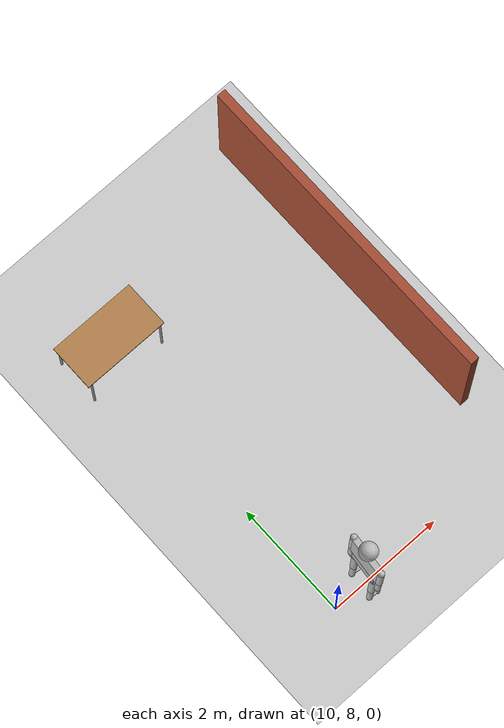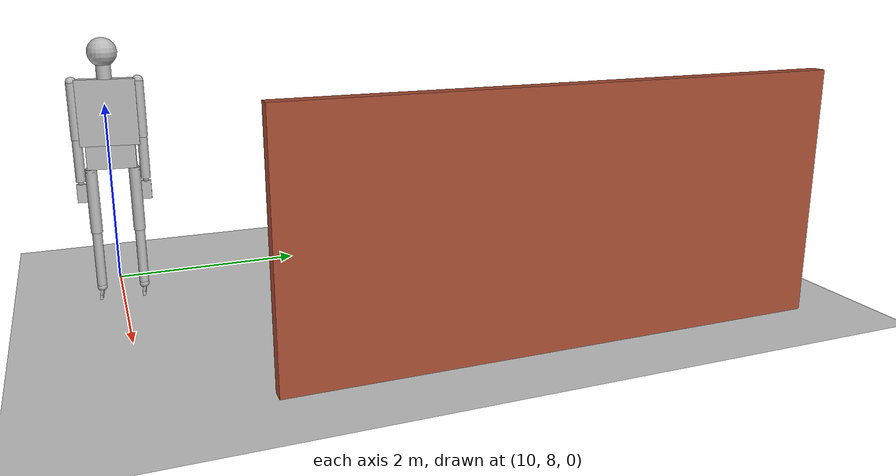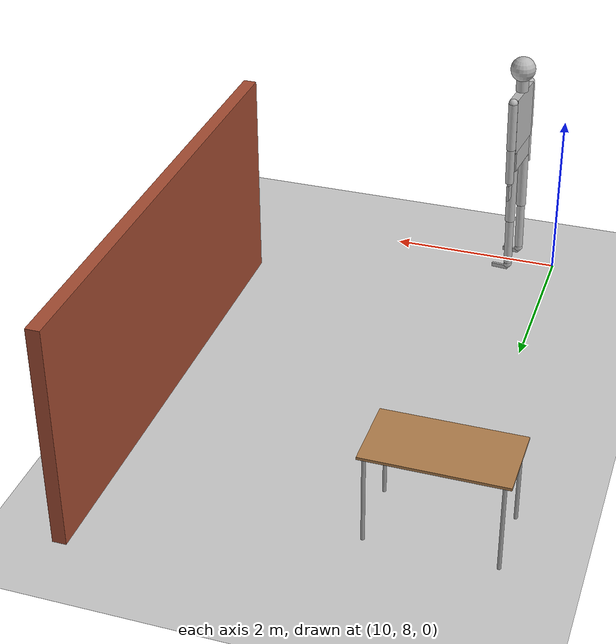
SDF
<sdf version="1.7">
 <world name="default">
  <model name="ground_plane">
   <static>1</static>
   <link name="link">
    <collision name="collision">
     <geometry><plane><normal>0 0 1</normal><size>100 100</size></plane></geometry>
     <surface>
      <contact><collide_bitmask>65535</collide_bitmask></contact>
      <friction><ode><mu>100</mu><mu2>50</mu2></ode></friction>
     </surface>
    </collision>
    <visual name="visual">
     <cast_shadows>0</cast_shadows>
     <geometry><plane><normal>0 0 1</normal><size>100 100</size></plane></geometry>
     <material>
      <script><uri>file://media/materials/scripts/gazebo.material</uri><name>Gazebo/Grey</name></script>
     </material>
    </visual>
   </link>
  </model>
  <model name="newworld">
   <link name="Wall_65">
    <pose>13.3999 10.8999 0 0 0 -1.5708</pose>
    <visual name="Wall_65_Visual">
     <pose>0 0 1.25 0 -0 0</pose>
     <geometry><box><size>5.5 0.15 2.5</size></box></geometry>
     <material>
      <script><uri>file://media/materials/scripts/gazebo.material</uri><name>Gazebo/Bricks</name></script>
      <ambient>1 1 1 1</ambient>
      <shader type="pixel"/>
     </material>
     <meta><layer>0</layer></meta>
    </visual>
    <collision name="Wall_65_Collision">
     <pose>0 0 1.25 0 -0 0</pose>
     <geometry><box><size>5.5 0.15 2.5</size></box></geometry>
     <surface>
      <friction>
       <ode><mu>1</mu><mu2>1</mu2><fdir1>0 0 0</fdir1><slip1>0</slip1><slip2>0</slip2></ode>
       <torsional>
        <coefficient>1</coefficient>
        <patch_radius>0</patch_radius>
        <surface_radius>0</surface_radius>
        <use_patch_radius>1</use_patch_radius>
        <ode><slip>0</slip></ode>
       </torsional>
      </friction>
      <bounce><restitution_coefficient>0</restitution_coefficient><threshold>1e+06</threshold></bounce>
      <contact>
       <collide_without_contact>0</collide_without_contact>
       <collide_without_contact_bitmask>1</collide_without_contact_bitmask>
       <collide_bitmask>1</collide_bitmask>
       <ode>
        <soft_cfm>0</soft_cfm>
        <soft_erp>0.2</soft_erp>
        <kp>1e+13</kp>
        <kd>1</kd>
        <max_vel>0.01</max_vel>
        <min_depth>0</min_depth>
       </ode>
       <bullet>
        <split_impulse>1</split_impulse>
        <split_impulse_penetration_threshold>-0.01</split_impulse_penetration_threshold>
        <soft_cfm>0</soft_cfm>
        <soft_erp>0.2</soft_erp>
        <kp>1e+13</kp>
        <kd>1</kd>
       </bullet>
      </contact>
     </surface>
    </collision>
   </link>
   <static>1</static>
   <pose>0.193711 0.903984 0 0 -0 0</pose>
  </model>
  <model name="ragdoll_0">
   <pose>10.5299 8.00768 1.39977 2.2e-05 0.015945 -0.104902</pose>
   <link name="hip">
    <inertial>
     <inertia><ixx>0.1</ixx><ixy>0</ixy><ixz>0</ixz><iyy>0.1</iyy><iyz>0</iyz><izz>0.1</izz></inertia>
     <mass>10</mass>
    </inertial>
    <collision name="hip_geom">
     <pose>0 0 0.125 0 -0 0</pose>
     <geometry><box><size>0.1 0.5 0.25</size></box></geometry>
     <surface>
      <friction><ode><mu>-1</mu><mu2>-1</mu2><fdir1>0 0 0</fdir1><slip1>0</slip1><slip2>0</slip2></ode></friction>
      <bounce><restitution_coefficient>0</restitution_coefficient><threshold>100000</threshold></bounce>
      <contact>
       <ode>
        <soft_cfm>0</soft_cfm>
        <soft_erp>0.2</soft_erp>
        <kp>1e+12</kp>
        <kd>1</kd>
        <max_vel>0</max_vel>
        <min_depth>0.001</min_depth>
       </ode>
      </contact>
     </surface>
    </collision>
    <visual name="hip_geom_visual">
     <pose>0 0 0.125 0 -0 0</pose>
     <geometry><box><size>0.1 0.5 0.25</size></box></geometry>
    </visual>
    <gravity>0</gravity>
   </link>
   <link name="l_thigh_pan">
    <pose>0 0.22 0 0 -0 0</pose>
    <inertial>
     <inertia><ixx>0.01</ixx><ixy>0</ixy><ixz>0</ixz><iyy>0.01</iyy><iyz>0</iyz><izz>0.01</izz></inertia>
     <mass>1</mass>
    </inertial>
    <collision name="l_thigh_pan_geom">
     <pose>0 0 -0.03 0 -0 0</pose>
     <geometry><sphere><radius>0.06</radius></sphere></geometry>
     <surface>
      <friction><ode><mu>-1</mu><mu2>-1</mu2><fdir1>0 0 0</fdir1><slip1>0</slip1><slip2>0</slip2></ode></friction>
      <bounce><restitution_coefficient>0</restitution_coefficient><threshold>100000</threshold></bounce>
      <contact>
       <ode>
        <soft_cfm>0</soft_cfm>
        <soft_erp>0.2</soft_erp>
        <kp>1e+12</kp>
        <kd>1</kd>
        <max_vel>0</max_vel>
        <min_depth>0.001</min_depth>
       </ode>
      </contact>
     </surface>
    </collision>
    <visual name="l_thigh_pan_geom_visual">
     <pose>0 0 -0.03 0 -0 0</pose>
     <geometry><sphere><radius>0.06</radius></sphere></geometry>
    </visual>
    <gravity>0</gravity>
   </link>
   <link name="l_thigh_lift">
    <pose>0 0.22 0 0 -0 0</pose>
    <inertial>
     <inertia><ixx>0.05</ixx><ixy>0</ixy><ixz>0</ixz><iyy>0.05</iyy><iyz>0</iyz><izz>0.05</izz></inertia>
     <mass>5</mass>
    </inertial>
    <collision name="l_thigh_lift_geom">
     <pose>0 0 -0.35 0 -0 0</pose>
     <geometry><cylinder><radius>0.06</radius><length>0.7</length></cylinder></geometry>
     <surface>
      <friction><ode><mu>-1</mu><mu2>-1</mu2><fdir1>0 0 0</fdir1><slip1>0</slip1><slip2>0</slip2></ode></friction>
      <bounce><restitution_coefficient>0</restitution_coefficient><threshold>100000</threshold></bounce>
      <contact>
       <ode>
        <soft_cfm>0</soft_cfm>
        <soft_erp>0.2</soft_erp>
        <kp>1e+12</kp>
        <kd>1</kd>
        <max_vel>0</max_vel>
        <min_depth>0.001</min_depth>
       </ode>
      </contact>
     </surface>
    </collision>
    <visual name="l_thigh_lift_geom_visual">
     <pose>0 0 -0.35 0 -0 0</pose>
     <geometry><cylinder><radius>0.06</radius><length>0.7</length></cylinder></geometry>
    </visual>
    <gravity>0</gravity>
   </link>
   <link name="l_calf">
    <pose>0 0.22 -0.7 0 -0 0</pose>
    <inertial>
     <inertia><ixx>0.02</ixx><ixy>0</ixy><ixz>0</ixz><iyy>0.02</iyy><iyz>0</iyz><izz>0.02</izz></inertia>
     <mass>2</mass>
    </inertial>
    <collision name="l_calf_geom">
     <pose>0 0 -0.3 0 -0 0</pose>
     <geometry><cylinder><radius>0.05</radius><length>0.6</length></cylinder></geometry>
     <surface>
      <friction><ode><mu>-1</mu><mu2>-1</mu2><fdir1>0 0 0</fdir1><slip1>0</slip1><slip2>0</slip2></ode></friction>
      <bounce><restitution_coefficient>0</restitution_coefficient><threshold>100000</threshold></bounce>
      <contact>
       <ode>
        <soft_cfm>0</soft_cfm>
        <soft_erp>0.2</soft_erp>
        <kp>1e+12</kp>
        <kd>1</kd>
        <max_vel>0</max_vel>
        <min_depth>0.001</min_depth>
       </ode>
      </contact>
     </surface>
    </collision>
    <visual name="l_calf_geom_visual">
     <pose>0 0 -0.3 0 -0 0</pose>
     <geometry><cylinder><radius>0.05</radius><length>0.6</length></cylinder></geometry>
    </visual>
    <gravity>0</gravity>
   </link>
   <link name="l_ankle">
    <pose>0 0.22 -1.325 0 -0 0</pose>
    <inertial>
     <inertia><ixx>0.01</ixx><ixy>0</ixy><ixz>0</ixz><iyy>0.01</iyy><iyz>0</iyz><izz>0.01</izz></inertia>
     <mass>1</mass>
    </inertial>
    <collision name="l_ankle_geom">
     <geometry><sphere><radius>0.05</radius></sphere></geometry>
     <surface>
      <friction><ode><mu>-1</mu><mu2>-1</mu2><fdir1>0 0 0</fdir1><slip1>0</slip1><slip2>0</slip2></ode></friction>
      <bounce><restitution_coefficient>0</restitution_coefficient><threshold>100000</threshold></bounce>
      <contact>
       <ode>
        <soft_cfm>0</soft_cfm>
        <soft_erp>0.2</soft_erp>
        <kp>1e+12</kp>
        <kd>1</kd>
        <max_vel>0</max_vel>
        <min_depth>0.001</min_depth>
       </ode>
      </contact>
     </surface>
    </collision>
    <visual name="l_ankle_geom_visual"><geometry><sphere><radius>0.05</radius></sphere></geometry></visual>
    <gravity>0</gravity>
   </link>
   <link name="l_foot">
    <pose>0 0.22 -1.35 0 -0 0</pose>
    <inertial>
     <pose>0.1 0 0 0 -0 0</pose>
     <inertia><ixx>0.01</ixx><ixy>0</ixy><ixz>0</ixz><iyy>0.01</iyy><iyz>0</iyz><izz>0.01</izz></inertia>
     <mass>1</mass>
    </inertial>
    <collision name="l_foot_geom">
     <pose>0.1 0 -0.025 0 -0 0</pose>
     <geometry><box><size>0.2 0.03 0.05</size></box></geometry>
     <surface>
      <friction><ode><mu>-1</mu><mu2>-1</mu2><fdir1>0 0 0</fdir1><slip1>0</slip1><slip2>0</slip2></ode></friction>
      <bounce><restitution_coefficient>0</restitution_coefficient><threshold>100000</threshold></bounce>
      <contact>
       <ode>
        <soft_cfm>0</soft_cfm>
        <soft_erp>0.2</soft_erp>
        <kp>1e+12</kp>
        <kd>1</kd>
        <max_vel>0</max_vel>
        <min_depth>0.001</min_depth>
       </ode>
      </contact>
     </surface>
    </collision>
    <visual name="l_foot_geom_visual">
     <pose>0.1 0 -0.025 0 -0 0</pose>
     <geometry><box><size>0.2 0.03 0.05</size></box></geometry>
    </visual>
   </link>
   <link name="r_thigh_pan">
    <pose>0 -0.22 0 0 -0 0</pose>
    <inertial>
     <inertia><ixx>0.01</ixx><ixy>0</ixy><ixz>0</ixz><iyy>0.01</iyy><iyz>0</iyz><izz>0.01</izz></inertia>
     <mass>1</mass>
    </inertial>
    <collision name="r_thigh_pan_geom">
     <pose>0 0 -0.03 0 -0 0</pose>
     <geometry><sphere><radius>0.06</radius></sphere></geometry>
     <surface>
      <friction><ode><mu>-1</mu><mu2>-1</mu2><fdir1>0 0 0</fdir1><slip1>0</slip1><slip2>0</slip2></ode></friction>
      <bounce><restitution_coefficient>0</restitution_coefficient><threshold>100000</threshold></bounce>
      <contact>
       <ode>
        <soft_cfm>0</soft_cfm>
        <soft_erp>0.2</soft_erp>
        <kp>1e+12</kp>
        <kd>1</kd>
        <max_vel>0</max_vel>
        <min_depth>0.001</min_depth>
       </ode>
      </contact>
     </surface>
    </collision>
    <visual name="r_thigh_pan_geom_visual">
     <pose>0 0 -0.03 0 -0 0</pose>
     <geometry><sphere><radius>0.06</radius></sphere></geometry>
    </visual>
    <gravity>0</gravity>
   </link>
   <link name="r_thigh_lift">
    <pose>0 -0.22 0 0 -0 0</pose>
    <inertial>
     <inertia><ixx>0.05</ixx><ixy>0</ixy><ixz>0</ixz><iyy>0.05</iyy><iyz>0</iyz><izz>0.05</izz></inertia>
     <mass>5</mass>
    </inertial>
    <collision name="r_thigh_lift_geom">
     <pose>0 0 -0.35 0 -0 0</pose>
     <geometry><cylinder><radius>0.06</radius><length>0.7</length></cylinder></geometry>
     <surface>
      <friction><ode><mu>-1</mu><mu2>-1</mu2><fdir1>0 0 0</fdir1><slip1>0</slip1><slip2>0</slip2></ode></friction>
      <bounce><restitution_coefficient>0</restitution_coefficient><threshold>100000</threshold></bounce>
      <contact>
       <ode>
        <soft_cfm>0</soft_cfm>
        <soft_erp>0.2</soft_erp>
        <kp>1e+12</kp>
        <kd>1</kd>
        <max_vel>0</max_vel>
        <min_depth>0.001</min_depth>
       </ode>
      </contact>
     </surface>
    </collision>
    <visual name="r_thigh_lift_geom_visual">
     <pose>0 0 -0.35 0 -0 0</pose>
     <geometry><cylinder><radius>0.06</radius><length>0.7</length></cylinder></geometry>
    </visual>
    <gravity>0</gravity>
   </link>
   <link name="r_calf">
    <pose>0 -0.22 -0.7 0 -0 0</pose>
    <inertial>
     <inertia><ixx>0.02</ixx><ixy>0</ixy><ixz>0</ixz><iyy>0.02</iyy><iyz>0</iyz><izz>0.02</izz></inertia>
     <mass>2</mass>
    </inertial>
    <collision name="r_calf_geom">
     <pose>0 0 -0.3 0 -0 0</pose>
     <geometry><cylinder><radius>0.05</radius><length>0.6</length></cylinder></geometry>
     <surface>
      <friction><ode><mu>-1</mu><mu2>-1</mu2><fdir1>0 0 0</fdir1><slip1>0</slip1><slip2>0</slip2></ode></friction>
      <bounce><restitution_coefficient>0</restitution_coefficient><threshold>100000</threshold></bounce>
      <contact>
       <ode>
        <soft_cfm>0</soft_cfm>
        <soft_erp>0.2</soft_erp>
        <kp>1e+12</kp>
        <kd>1</kd>
        <max_vel>0</max_vel>
        <min_depth>0.001</min_depth>
       </ode>
      </contact>
     </surface>
    </collision>
    <visual name="r_calf_geom_visual">
     <pose>0 0 -0.3 0 -0 0</pose>
     <geometry><cylinder><radius>0.05</radius><length>0.6</length></cylinder></geometry>
    </visual>
    <gravity>0</gravity>
   </link>
   <link name="r_ankle">
    <pose>0 -0.22 -1.325 0 -0 0</pose>
    <inertial>
     <inertia><ixx>0.01</ixx><ixy>0</ixy><ixz>0</ixz><iyy>0.01</iyy><iyz>0</iyz><izz>0.01</izz></inertia>
     <mass>1</mass>
    </inertial>
    <collision name="r_ankle_geom">
     <geometry><sphere><radius>0.05</radius></sphere></geometry>
     <surface>
      <friction><ode><mu>-1</mu><mu2>-1</mu2><fdir1>0 0 0</fdir1><slip1>0</slip1><slip2>0</slip2></ode></friction>
      <bounce><restitution_coefficient>0</restitution_coefficient><threshold>100000</threshold></bounce>
      <contact>
       <ode>
        <soft_cfm>0</soft_cfm>
        <soft_erp>0.2</soft_erp>
        <kp>1e+12</kp>
        <kd>1</kd>
        <max_vel>0</max_vel>
        <min_depth>0.001</min_depth>
       </ode>
      </contact>
     </surface>
    </collision>
    <visual name="r_ankle_geom_visual"><geometry><sphere><radius>0.05</radius></sphere></geometry></visual>
    <gravity>0</gravity>
   </link>
   <link name="r_foot">
    <pose>0 -0.22 -1.35 0 -0 0</pose>
    <inertial>
     <pose>0.1 0 0 0 -0 0</pose>
     <inertia><ixx>0.01</ixx><ixy>0</ixy><ixz>0</ixz><iyy>0.01</iyy><iyz>0</iyz><izz>0.01</izz></inertia>
     <mass>1</mass>
    </inertial>
    <collision name="r_foot_geom">
     <pose>0.1 0 -0.025 0 -0 0</pose>
     <geometry><box><size>0.2 0.03 0.05</size></box></geometry>
     <surface>
      <friction><ode><mu>-1</mu><mu2>-1</mu2><fdir1>0 0 0</fdir1><slip1>0</slip1><slip2>0</slip2></ode></friction>
      <bounce><restitution_coefficient>0</restitution_coefficient><threshold>100000</threshold></bounce>
      <contact>
       <ode>
        <soft_cfm>0</soft_cfm>
        <soft_erp>0.2</soft_erp>
        <kp>1e+12</kp>
        <kd>1</kd>
        <max_vel>0</max_vel>
        <min_depth>0.001</min_depth>
       </ode>
      </contact>
     </surface>
    </collision>
    <visual name="r_foot_geom_visual">
     <pose>0.1 0 -0.025 0 -0 0</pose>
     <geometry><box><size>0.2 0.03 0.05</size></box></geometry>
    </visual>
   </link>
   <link name="torso">
    <pose>0 0 0.25 0 -0 0</pose>
    <inertial>
     <inertia><ixx>0.3</ixx><ixy>0</ixy><ixz>0</ixz><iyy>0.3</iyy><iyz>0</iyz><izz>0.3</izz></inertia>
     <mass>30</mass>
    </inertial>
    <collision name="torso_geom">
     <pose>0 0 0.35 0 -0 0</pose>
     <geometry><box><size>0.1 0.6 0.7</size></box></geometry>
     <surface>
      <friction><ode><mu>-1</mu><mu2>-1</mu2><fdir1>0 0 0</fdir1><slip1>0</slip1><slip2>0</slip2></ode></friction>
      <bounce><restitution_coefficient>0</restitution_coefficient><threshold>100000</threshold></bounce>
      <contact>
       <ode>
        <soft_cfm>0</soft_cfm>
        <soft_erp>0.2</soft_erp>
        <kp>1e+12</kp>
        <kd>1</kd>
        <max_vel>0</max_vel>
        <min_depth>0.001</min_depth>
       </ode>
      </contact>
     </surface>
    </collision>
    <visual name="torso_geom_visual">
     <pose>0 0 0.35 0 -0 0</pose>
     <geometry><box><size>0.1 0.6 0.7</size></box></geometry>
    </visual>
    <gravity>0</gravity>
   </link>
   <link name="l_shoulder">
    <pose>0 0.3275 0.9225 0 -0 0</pose>
    <inertial>
     <inertia><ixx>0.01</ixx><ixy>0</ixy><ixz>0</ixz><iyy>0.01</iyy><iyz>0</iyz><izz>0.01</izz></inertia>
     <mass>1</mass>
    </inertial>
    <collision name="l_shoulder_geom">
     <geometry><sphere><radius>0.055</radius></sphere></geometry>
     <surface>
      <friction><ode><mu>-1</mu><mu2>-1</mu2><fdir1>0 0 0</fdir1><slip1>0</slip1><slip2>0</slip2></ode></friction>
      <bounce><restitution_coefficient>0</restitution_coefficient><threshold>100000</threshold></bounce>
      <contact>
       <ode>
        <soft_cfm>0</soft_cfm>
        <soft_erp>0.2</soft_erp>
        <kp>1e+12</kp>
        <kd>1</kd>
        <max_vel>0</max_vel>
        <min_depth>0.001</min_depth>
       </ode>
      </contact>
     </surface>
    </collision>
    <visual name="l_shoulder_geom_visual"><geometry><sphere><radius>0.055</radius></sphere></geometry></visual>
    <gravity>0</gravity>
   </link>
   <link name="l_upper_arm">
    <pose>0 0.3275 0.9225 0 -0 0</pose>
    <inertial>
     <inertia><ixx>0.02</ixx><ixy>0</ixy><ixz>0</ixz><iyy>0.02</iyy><iyz>0</iyz><izz>0.02</izz></inertia>
     <mass>2</mass>
    </inertial>
    <collision name="l_upper_arm_geom">
     <pose>0 0 -0.3 0 -0 0</pose>
     <geometry><cylinder><radius>0.055</radius><length>0.6</length></cylinder></geometry>
     <surface>
      <friction><ode><mu>-1</mu><mu2>-1</mu2><fdir1>0 0 0</fdir1><slip1>0</slip1><slip2>0</slip2></ode></friction>
      <bounce><restitution_coefficient>0</restitution_coefficient><threshold>100000</threshold></bounce>
      <contact>
       <ode>
        <soft_cfm>0</soft_cfm>
        <soft_erp>0.2</soft_erp>
        <kp>1e+12</kp>
        <kd>1</kd>
        <max_vel>0</max_vel>
        <min_depth>0.001</min_depth>
       </ode>
      </contact>
     </surface>
    </collision>
    <visual name="l_upper_arm_geom_visual">
     <pose>0 0 -0.3 0 -0 0</pose>
     <geometry><cylinder><radius>0.055</radius><length>0.6</length></cylinder></geometry>
    </visual>
    <gravity>0</gravity>
   </link>
   <link name="l_forearm">
    <pose>0 0.3275 0.3225 0 -0 0</pose>
    <inertial>
     <inertia><ixx>0.01</ixx><ixy>0</ixy><ixz>0</ixz><iyy>0.01</iyy><iyz>0</iyz><izz>0.01</izz></inertia>
     <mass>1</mass>
    </inertial>
    <collision name="l_forearm_geom">
     <pose>0 0 -0.225 0 -0 0</pose>
     <geometry><cylinder><radius>0.05</radius><length>0.45</length></cylinder></geometry>
     <surface>
      <friction><ode><mu>-1</mu><mu2>-1</mu2><fdir1>0 0 0</fdir1><slip1>0</slip1><slip2>0</slip2></ode></friction>
      <bounce><restitution_coefficient>0</restitution_coefficient><threshold>100000</threshold></bounce>
      <contact>
       <ode>
        <soft_cfm>0</soft_cfm>
        <soft_erp>0.2</soft_erp>
        <kp>1e+12</kp>
        <kd>1</kd>
        <max_vel>0</max_vel>
        <min_depth>0.001</min_depth>
       </ode>
      </contact>
     </surface>
    </collision>
    <visual name="l_forearm_geom_visual">
     <pose>0 0 -0.225 0 -0 0</pose>
     <geometry><cylinder><radius>0.05</radius><length>0.45</length></cylinder></geometry>
    </visual>
    <gravity>0</gravity>
   </link>
   <link name="l_wrist">
    <pose>0 0.3275 -0.1425 0 -0 0</pose>
    <inertial>
     <inertia><ixx>0.01</ixx><ixy>0</ixy><ixz>0</ixz><iyy>0.01</iyy><iyz>0</iyz><izz>0.01</izz></inertia>
     <mass>1</mass>
    </inertial>
    <collision name="l_wrist_geom">
     <geometry><sphere><radius>0.03</radius></sphere></geometry>
     <surface>
      <friction><ode><mu>-1</mu><mu2>-1</mu2><fdir1>0 0 0</fdir1><slip1>0</slip1><slip2>0</slip2></ode></friction>
      <bounce><restitution_coefficient>0</restitution_coefficient><threshold>100000</threshold></bounce>
      <contact>
       <ode>
        <soft_cfm>0</soft_cfm>
        <soft_erp>0.2</soft_erp>
        <kp>1e+12</kp>
        <kd>1</kd>
        <max_vel>0</max_vel>
        <min_depth>0.001</min_depth>
       </ode>
      </contact>
     </surface>
    </collision>
    <visual name="l_wrist_geom_visual"><geometry><sphere><radius>0.03</radius></sphere></geometry></visual>
    <gravity>0</gravity>
   </link>
   <link name="l_hand">
    <pose>0 0.3275 -0.1575 0 -0 0</pose>
    <inertial>
     <inertia><ixx>0.01</ixx><ixy>0</ixy><ixz>0</ixz><iyy>0.01</iyy><iyz>0</iyz><izz>0.01</izz></inertia>
     <mass>1</mass>
    </inertial>
    <collision name="l_hand_geom">
     <pose>0 0 -0.1 0 -0 0</pose>
     <geometry><box><size>0.03 0.1 0.2</size></box></geometry>
     <surface>
      <friction><ode><mu>-1</mu><mu2>-1</mu2><fdir1>0 0 0</fdir1><slip1>0</slip1><slip2>0</slip2></ode></friction>
      <bounce><restitution_coefficient>0</restitution_coefficient><threshold>100000</threshold></bounce>
      <contact>
       <ode>
        <soft_cfm>0</soft_cfm>
        <soft_erp>0.2</soft_erp>
        <kp>1e+12</kp>
        <kd>1</kd>
        <max_vel>0</max_vel>
        <min_depth>0.001</min_depth>
       </ode>
      </contact>
     </surface>
    </collision>
    <visual name="l_hand_geom_visual">
     <pose>0 0 -0.1 0 -0 0</pose>
     <geometry><box><size>0.03 0.1 0.2</size></box></geometry>
    </visual>
    <gravity>0</gravity>
   </link>
   <link name="neck">
    <pose>0 0 0.95 0 -0 0</pose>
    <inertial>
     <inertia><ixx>0.01</ixx><ixy>0</ixy><ixz>0</ixz><iyy>0.01</iyy><iyz>0</iyz><izz>0.01</izz></inertia>
     <mass>1</mass>
    </inertial>
    <collision name="neck_geom">
     <pose>0 0 0.1 0 -0 0</pose>
     <geometry><cylinder><radius>0.075</radius><length>0.2</length></cylinder></geometry>
     <surface>
      <friction><ode><mu>-1</mu><mu2>-1</mu2><fdir1>0 0 0</fdir1><slip1>0</slip1><slip2>0</slip2></ode></friction>
      <bounce><restitution_coefficient>0</restitution_coefficient><threshold>100000</threshold></bounce>
      <contact>
       <ode>
        <soft_cfm>0</soft_cfm>
        <soft_erp>0.2</soft_erp>
        <kp>1e+12</kp>
        <kd>1</kd>
        <max_vel>0</max_vel>
        <min_depth>0.001</min_depth>
       </ode>
      </contact>
     </surface>
    </collision>
    <visual name="neck_geom_visual">
     <pose>0 0 0.1 0 -0 0</pose>
     <geometry><cylinder><radius>0.075</radius><length>0.2</length></cylinder></geometry>
    </visual>
    <gravity>0</gravity>
   </link>
   <link name="head">
    <pose>0 0 1.225 0 -0 0</pose>
    <inertial>
     <inertia><ixx>0.1</ixx><ixy>0</ixy><ixz>0</ixz><iyy>0.1</iyy><iyz>0</iyz><izz>0.1</izz></inertia>
     <mass>10</mass>
    </inertial>
    <collision name="head_geom">
     <geometry><sphere><radius>0.15</radius></sphere></geometry>
     <surface>
      <friction><ode><mu>-1</mu><mu2>-1</mu2><fdir1>0 0 0</fdir1><slip1>0</slip1><slip2>0</slip2></ode></friction>
      <bounce><restitution_coefficient>0</restitution_coefficient><threshold>100000</threshold></bounce>
      <contact>
       <ode>
        <soft_cfm>0</soft_cfm>
        <soft_erp>0.2</soft_erp>
        <kp>1e+12</kp>
        <kd>1</kd>
        <max_vel>0</max_vel>
        <min_depth>0.001</min_depth>
       </ode>
      </contact>
     </surface>
    </collision>
    <visual name="head_geom_visual"><geometry><sphere><radius>0.15</radius></sphere></geometry></visual>
    <gravity>0</gravity>
   </link>
   <link name="r_shoulder">
    <pose>0 -0.3275 0.9225 0 -0 0</pose>
    <inertial>
     <inertia><ixx>0.01</ixx><ixy>0</ixy><ixz>0</ixz><iyy>0.01</iyy><iyz>0</iyz><izz>0.01</izz></inertia>
     <mass>1</mass>
    </inertial>
    <collision name="r_shoulder_geom">
     <geometry><sphere><radius>0.055</radius></sphere></geometry>
     <surface>
      <friction><ode><mu>-1</mu><mu2>-1</mu2><fdir1>0 0 0</fdir1><slip1>0</slip1><slip2>0</slip2></ode></friction>
      <bounce><restitution_coefficient>0</restitution_coefficient><threshold>100000</threshold></bounce>
      <contact>
       <ode>
        <soft_cfm>0</soft_cfm>
        <soft_erp>0.2</soft_erp>
        <kp>1e+12</kp>
        <kd>1</kd>
        <max_vel>0</max_vel>
        <min_depth>0.001</min_depth>
       </ode>
      </contact>
     </surface>
    </collision>
    <visual name="r_shoulder_geom_visual"><geometry><sphere><radius>0.055</radius></sphere></geometry></visual>
    <gravity>0</gravity>
   </link>
   <link name="r_upper_arm">
    <pose>0 -0.3275 0.9225 0 -0 0</pose>
    <inertial>
     <inertia><ixx>0.02</ixx><ixy>0</ixy><ixz>0</ixz><iyy>0.02</iyy><iyz>0</iyz><izz>0.02</izz></inertia>
     <mass>2</mass>
    </inertial>
    <collision name="r_upper_arm_geom">
     <pose>0 0 -0.3 0 -0 0</pose>
     <geometry><cylinder><radius>0.055</radius><length>0.6</length></cylinder></geometry>
     <surface>
      <friction><ode><mu>-1</mu><mu2>-1</mu2><fdir1>0 0 0</fdir1><slip1>0</slip1><slip2>0</slip2></ode></friction>
      <bounce><restitution_coefficient>0</restitution_coefficient><threshold>100000</threshold></bounce>
      <contact>
       <ode>
        <soft_cfm>0</soft_cfm>
        <soft_erp>0.2</soft_erp>
        <kp>1e+12</kp>
        <kd>1</kd>
        <max_vel>0</max_vel>
        <min_depth>0.001</min_depth>
       </ode>
      </contact>
     </surface>
    </collision>
    <visual name="r_upper_arm_geom_visual">
     <pose>0 0 -0.3 0 -0 0</pose>
     <geometry><cylinder><radius>0.055</radius><length>0.6</length></cylinder></geometry>
    </visual>
    <gravity>0</gravity>
   </link>
   <link name="r_forearm">
    <pose>0 -0.3275 0.3225 0 -0 0</pose>
    <inertial>
     <inertia><ixx>0.01</ixx><ixy>0</ixy><ixz>0</ixz><iyy>0.01</iyy><iyz>0</iyz><izz>0.01</izz></inertia>
     <mass>1</mass>
    </inertial>
    <collision name="r_forearm_geom">
     <pose>0 0 -0.225 0 -0 0</pose>
     <geometry><cylinder><radius>0.05</radius><length>0.45</length></cylinder></geometry>
     <surface>
      <friction><ode><mu>-1</mu><mu2>-1</mu2><fdir1>0 0 0</fdir1><slip1>0</slip1><slip2>0</slip2></ode></friction>
      <bounce><restitution_coefficient>0</restitution_coefficient><threshold>100000</threshold></bounce>
      <contact>
       <ode>
        <soft_cfm>0</soft_cfm>
        <soft_erp>0.2</soft_erp>
        <kp>1e+12</kp>
        <kd>1</kd>
        <max_vel>0</max_vel>
        <min_depth>0.001</min_depth>
       </ode>
      </contact>
     </surface>
    </collision>
    <visual name="r_forearm_geom_visual">
     <pose>0 0 -0.225 0 -0 0</pose>
     <geometry><cylinder><radius>0.05</radius><length>0.45</length></cylinder></geometry>
    </visual>
    <gravity>0</gravity>
   </link>
   <link name="r_wrist">
    <pose>0 -0.3275 -0.1425 0 -0 0</pose>
    <inertial>
     <inertia><ixx>0.01</ixx><ixy>0</ixy><ixz>0</ixz><iyy>0.01</iyy><iyz>0</iyz><izz>0.01</izz></inertia>
     <mass>1</mass>
    </inertial>
    <collision name="r_wrist_geom">
     <geometry><sphere><radius>0.03</radius></sphere></geometry>
     <surface>
      <friction><ode><mu>-1</mu><mu2>-1</mu2><fdir1>0 0 0</fdir1><slip1>0</slip1><slip2>0</slip2></ode></friction>
      <bounce><restitution_coefficient>0</restitution_coefficient><threshold>100000</threshold></bounce>
      <contact>
       <ode>
        <soft_cfm>0</soft_cfm>
        <soft_erp>0.2</soft_erp>
        <kp>1e+12</kp>
        <kd>1</kd>
        <max_vel>0</max_vel>
        <min_depth>0.001</min_depth>
       </ode>
      </contact>
     </surface>
    </collision>
    <visual name="r_wrist_geom_visual"><geometry><sphere><radius>0.03</radius></sphere></geometry></visual>
    <gravity>0</gravity>
   </link>
   <link name="r_hand">
    <pose>0 -0.3275 -0.1575 0 -0 0</pose>
    <inertial>
     <inertia><ixx>0.01</ixx><ixy>0</ixy><ixz>0</ixz><iyy>0.01</iyy><iyz>0</iyz><izz>0.01</izz></inertia>
     <mass>1</mass>
    </inertial>
    <collision name="r_hand_geom">
     <pose>0 0 -0.1 0 -0 0</pose>
     <geometry><box><size>0.03 0.1 0.2</size></box></geometry>
     <surface>
      <friction><ode><mu>-1</mu><mu2>-1</mu2><fdir1>0 0 0</fdir1><slip1>0</slip1><slip2>0</slip2></ode></friction>
      <bounce><restitution_coefficient>0</restitution_coefficient><threshold>100000</threshold></bounce>
      <contact>
       <ode>
        <soft_cfm>0</soft_cfm>
        <soft_erp>0.2</soft_erp>
        <kp>1e+12</kp>
        <kd>1</kd>
        <max_vel>0</max_vel>
        <min_depth>0.001</min_depth>
       </ode>
      </contact>
     </surface>
    </collision>
    <visual name="r_hand_geom_visual">
     <pose>0 0 -0.1 0 -0 0</pose>
     <geometry><box><size>0.03 0.1 0.2</size></box></geometry>
    </visual>
    <gravity>0</gravity>
   </link>
   <joint name="l_thigh_pan_joint" type="revolute">
    <parent>hip</parent>
    <child>l_thigh_pan</child>
    <axis>
     <dynamics>
      <damping>0</damping>
      <friction>0</friction>
      <spring_reference>0</spring_reference>
      <spring_stiffness>0</spring_stiffness>
     </dynamics>
     <limit><lower>-1.5708</lower><upper>1.5708</upper><effort>0</effort><velocity>0</velocity></limit>
     <xyz expressed_in="__model__">0 0 1</xyz>
    </axis>
   </joint>
   <joint name="l_thigh_lift_joint" type="revolute">
    <parent>l_thigh_pan</parent>
    <child>l_thigh_lift</child>
    <axis>
     <dynamics>
      <damping>0</damping>
      <friction>0</friction>
      <spring_reference>0</spring_reference>
      <spring_stiffness>0</spring_stiffness>
     </dynamics>
     <limit><lower>-1.5708</lower><upper>1.5708</upper><effort>0</effort><velocity>0</velocity></limit>
     <xyz expressed_in="__model__">0 1 0</xyz>
    </axis>
   </joint>
   <joint name="l_calf_joint" type="revolute">
    <parent>l_thigh_lift</parent>
    <child>l_calf</child>
    <axis>
     <dynamics>
      <damping>0</damping>
      <friction>0</friction>
      <spring_reference>0</spring_reference>
      <spring_stiffness>0</spring_stiffness>
     </dynamics>
     <limit><lower>-1.5708</lower><upper>1.5708</upper><effort>0</effort><velocity>0</velocity></limit>
     <xyz expressed_in="__model__">0 1 0</xyz>
    </axis>
   </joint>
   <joint name="l_ankle_joint" type="revolute">
    <parent>l_calf</parent>
    <child>l_ankle</child>
    <axis>
     <dynamics>
      <damping>0</damping>
      <friction>0</friction>
      <spring_reference>0</spring_reference>
      <spring_stiffness>0</spring_stiffness>
     </dynamics>
     <limit><lower>-1.5708</lower><upper>1.5708</upper><effort>0</effort><velocity>0</velocity></limit>
     <xyz expressed_in="__model__">0 1 0</xyz>
    </axis>
   </joint>
   <joint name="l_foot_joint" type="revolute">
    <parent>l_ankle</parent>
    <child>l_foot</child>
    <axis>
     <dynamics>
      <damping>0</damping>
      <friction>0</friction>
      <spring_reference>0</spring_reference>
      <spring_stiffness>0</spring_stiffness>
     </dynamics>
     <limit><lower>-1.5708</lower><upper>1.5708</upper><effort>0</effort><velocity>0</velocity></limit>
     <xyz expressed_in="__model__">1 0 0</xyz>
    </axis>
   </joint>
   <joint name="r_thigh_pan_joint" type="revolute">
    <parent>hip</parent>
    <child>r_thigh_pan</child>
    <axis>
     <dynamics>
      <damping>0</damping>
      <friction>0</friction>
      <spring_reference>0</spring_reference>
      <spring_stiffness>0</spring_stiffness>
     </dynamics>
     <limit><lower>-1.5708</lower><upper>1.5708</upper><effort>0</effort><velocity>0</velocity></limit>
     <xyz expressed_in="__model__">0 0 1</xyz>
    </axis>
   </joint>
   <joint name="r_thigh_lift_joint" type="revolute">
    <parent>r_thigh_pan</parent>
    <child>r_thigh_lift</child>
    <axis>
     <dynamics>
      <damping>0</damping>
      <friction>0</friction>
      <spring_reference>0</spring_reference>
      <spring_stiffness>0</spring_stiffness>
     </dynamics>
     <limit><lower>-1.5708</lower><upper>1.5708</upper><effort>0</effort><velocity>0</velocity></limit>
     <xyz expressed_in="__model__">0 1 0</xyz>
    </axis>
   </joint>
   <joint name="r_calf_joint" type="revolute">
    <parent>r_thigh_lift</parent>
    <child>r_calf</child>
    <axis>
     <dynamics>
      <damping>0</damping>
      <friction>0</friction>
      <spring_reference>0</spring_reference>
      <spring_stiffness>0</spring_stiffness>
     </dynamics>
     <limit><lower>-1.5708</lower><upper>1.5708</upper><effort>0</effort><velocity>0</velocity></limit>
     <xyz expressed_in="__model__">0 1 0</xyz>
    </axis>
   </joint>
   <joint name="r_ankle_joint" type="revolute">
    <parent>r_calf</parent>
    <child>r_ankle</child>
    <axis>
     <dynamics>
      <damping>0</damping>
      <friction>0</friction>
      <spring_reference>0</spring_reference>
      <spring_stiffness>0</spring_stiffness>
     </dynamics>
     <limit><lower>-1.5708</lower><upper>1.5708</upper><effort>0</effort><velocity>0</velocity></limit>
     <xyz expressed_in="__model__">0 1 0</xyz>
    </axis>
   </joint>
   <joint name="r_foot_joint" type="revolute">
    <parent>r_ankle</parent>
    <child>r_foot</child>
    <axis>
     <dynamics>
      <damping>0</damping>
      <friction>0</friction>
      <spring_reference>0</spring_reference>
      <spring_stiffness>0</spring_stiffness>
     </dynamics>
     <limit><lower>-1.5708</lower><upper>1.5708</upper><effort>0</effort><velocity>0</velocity></limit>
     <xyz expressed_in="__model__">1 0 0</xyz>
    </axis>
   </joint>
   <joint name="torso_joint" type="revolute">
    <parent>hip</parent>
    <child>torso</child>
    <axis>
     <dynamics>
      <damping>0</damping>
      <friction>0</friction>
      <spring_reference>0</spring_reference>
      <spring_stiffness>0</spring_stiffness>
     </dynamics>
     <limit><lower>-1.5708</lower><upper>1.5708</upper><effort>0</effort><velocity>0</velocity></limit>
     <xyz expressed_in="__model__">0 1 0</xyz>
    </axis>
   </joint>
   <joint name="l_shoulder_joint" type="revolute">
    <parent>torso</parent>
    <child>l_shoulder</child>
    <axis>
     <dynamics>
      <damping>0</damping>
      <friction>0</friction>
      <spring_reference>0</spring_reference>
      <spring_stiffness>0</spring_stiffness>
     </dynamics>
     <limit><lower>-1.5708</lower><upper>1.5708</upper><effort>0</effort><velocity>0</velocity></limit>
     <xyz expressed_in="__model__">1 0 0</xyz>
    </axis>
   </joint>
   <joint name="l_upper_arm_joint" type="revolute">
    <parent>l_shoulder</parent>
    <child>l_upper_arm</child>
    <axis>
     <dynamics>
      <damping>0</damping>
      <friction>0</friction>
      <spring_reference>0</spring_reference>
      <spring_stiffness>0</spring_stiffness>
     </dynamics>
     <limit><lower>-1.5708</lower><upper>1.5708</upper><effort>0</effort><velocity>0</velocity></limit>
     <xyz expressed_in="__model__">0 1 0</xyz>
    </axis>
   </joint>
   <joint name="l_forearm_joint" type="revolute">
    <parent>l_upper_arm</parent>
    <child>l_forearm</child>
    <axis>
     <dynamics>
      <damping>0</damping>
      <friction>0</friction>
      <spring_reference>0</spring_reference>
      <spring_stiffness>0</spring_stiffness>
     </dynamics>
     <limit><lower>-1.5708</lower><upper>1.5708</upper><effort>0</effort><velocity>0</velocity></limit>
     <xyz expressed_in="__model__">0 1 0</xyz>
    </axis>
   </joint>
   <joint name="l_wrist_joint" type="revolute">
    <parent>l_forearm</parent>
    <child>l_wrist</child>
    <axis>
     <dynamics>
      <damping>0</damping>
      <friction>0</friction>
      <spring_reference>0</spring_reference>
      <spring_stiffness>0</spring_stiffness>
     </dynamics>
     <limit><lower>-1.5708</lower><upper>1.5708</upper><effort>0</effort><velocity>0</velocity></limit>
     <xyz expressed_in="__model__">0 1 0</xyz>
    </axis>
   </joint>
   <joint name="l_hand_joint" type="revolute">
    <parent>l_wrist</parent>
    <child>l_hand</child>
    <axis>
     <dynamics>
      <damping>0</damping>
      <friction>0</friction>
      <spring_reference>0</spring_reference>
      <spring_stiffness>0</spring_stiffness>
     </dynamics>
     <limit><lower>-1.5708</lower><upper>1.5708</upper><effort>0</effort><velocity>0</velocity></limit>
     <xyz expressed_in="__model__">0 1 0</xyz>
    </axis>
   </joint>
   <joint name="neck_joint" type="revolute">
    <parent>torso</parent>
    <child>neck</child>
    <axis>
     <dynamics>
      <damping>0</damping>
      <friction>0</friction>
      <spring_reference>0</spring_reference>
      <spring_stiffness>0</spring_stiffness>
     </dynamics>
     <limit><lower>-1.5708</lower><upper>1.5708</upper><effort>0</effort><velocity>0</velocity></limit>
     <xyz expressed_in="__model__">0 0 1</xyz>
    </axis>
   </joint>
   <joint name="head_joint" type="revolute">
    <parent>neck</parent>
    <child>head</child>
    <axis>
     <dynamics>
      <damping>0</damping>
      <friction>0</friction>
      <spring_reference>0</spring_reference>
      <spring_stiffness>0</spring_stiffness>
     </dynamics>
     <limit><lower>-1.5708</lower><upper>1.5708</upper><effort>0</effort><velocity>0</velocity></limit>
     <xyz expressed_in="__model__">0 1 0</xyz>
    </axis>
   </joint>
   <joint name="r_shoulder_joint" type="revolute">
    <parent>torso</parent>
    <child>r_shoulder</child>
    <axis>
     <dynamics>
      <damping>0</damping>
      <friction>0</friction>
      <spring_reference>0</spring_reference>
      <spring_stiffness>0</spring_stiffness>
     </dynamics>
     <limit><lower>-1.5708</lower><upper>1.5708</upper><effort>0</effort><velocity>0</velocity></limit>
     <xyz expressed_in="__model__">1 0 0</xyz>
    </axis>
   </joint>
   <joint name="r_upper_arm_joint" type="revolute">
    <parent>r_shoulder</parent>
    <child>r_upper_arm</child>
    <axis>
     <dynamics>
      <damping>0</damping>
      <friction>0</friction>
      <spring_reference>0</spring_reference>
      <spring_stiffness>0</spring_stiffness>
     </dynamics>
     <limit><lower>-1.5708</lower><upper>1.5708</upper><effort>0</effort><velocity>0</velocity></limit>
     <xyz expressed_in="__model__">0 1 0</xyz>
    </axis>
   </joint>
   <joint name="r_forearm_joint" type="revolute">
    <parent>r_upper_arm</parent>
    <child>r_forearm</child>
    <axis>
     <dynamics>
      <damping>0</damping>
      <friction>0</friction>
      <spring_reference>0</spring_reference>
      <spring_stiffness>0</spring_stiffness>
     </dynamics>
     <limit><lower>-1.5708</lower><upper>1.5708</upper><effort>0</effort><velocity>0</velocity></limit>
     <xyz expressed_in="__model__">0 1 0</xyz>
    </axis>
   </joint>
   <joint name="r_wrist_joint" type="revolute">
    <parent>r_forearm</parent>
    <child>r_wrist</child>
    <axis>
     <dynamics>
      <damping>0</damping>
      <friction>0</friction>
      <spring_reference>0</spring_reference>
      <spring_stiffness>0</spring_stiffness>
     </dynamics>
     <limit><lower>-1.5708</lower><upper>1.5708</upper><effort>0</effort><velocity>0</velocity></limit>
     <xyz expressed_in="__model__">0 1 0</xyz>
    </axis>
   </joint>
   <joint name="r_hand_joint" type="revolute">
    <parent>r_wrist</parent>
    <child>r_hand</child>
    <axis>
     <dynamics>
      <damping>0</damping>
      <friction>0</friction>
      <spring_reference>0</spring_reference>
      <spring_stiffness>0</spring_stiffness>
     </dynamics>
     <limit><lower>-1.5708</lower><upper>1.5708</upper><effort>0</effort><velocity>0</velocity></limit>
     <xyz expressed_in="__model__">0 1 0</xyz>
    </axis>
   </joint>
   <static>0</static>
  </model>
  <model name="table_2">
   <static>1</static>
   <link name="link">
    <collision name="surface">
     <pose>0 0 1 0 -0 0</pose>
     <geometry><box><size>1.5 0.8 0.03</size></box></geometry>
     <surface><friction><ode><mu>0.6</mu><mu2>0.6</mu2></ode></friction></surface>
    </collision>
    <visual name="visual1">
     <pose>0 0 1 0 -0 0</pose>
     <geometry><box><size>1.5 0.8 0.03</size></box></geometry>
     <material>
      <script><uri>file://media/materials/scripts/gazebo.material</uri><name>Gazebo/Wood</name></script>
     </material>
    </visual>
    <collision name="front_left_leg">
     <pose>0.68 0.38 0.5 0 -0 0</pose>
     <geometry><cylinder><radius>0.02</radius><length>1</length></cylinder></geometry>
    </collision>
    <visual name="front_left_leg">
     <pose>0.68 0.38 0.5 0 -0 0</pose>
     <geometry><cylinder><radius>0.02</radius><length>1</length></cylinder></geometry>
     <material>
      <script><uri>file://media/materials/scripts/gazebo.material</uri><name>Gazebo/Grey</name></script>
     </material>
    </visual>
    <collision name="front_right_leg">
     <pose>0.68 -0.38 0.5 0 -0 0</pose>
     <geometry><cylinder><radius>0.02</radius><length>1</length></cylinder></geometry>
    </collision>
    <visual name="front_right_leg">
     <pose>0.68 -0.38 0.5 0 -0 0</pose>
     <geometry><cylinder><radius>0.02</radius><length>1</length></cylinder></geometry>
     <material>
      <script><uri>file://media/materials/scripts/gazebo.material</uri><name>Gazebo/Grey</name></script>
     </material>
    </visual>
    <collision name="back_right_leg">
     <pose>-0.68 -0.38 0.5 0 -0 0</pose>
     <geometry><cylinder><radius>0.02</radius><length>1</length></cylinder></geometry>
    </collision>
    <visual name="back_right_leg">
     <pose>-0.68 -0.38 0.5 0 -0 0</pose>
     <geometry><cylinder><radius>0.02</radius><length>1</length></cylinder></geometry>
     <material>
      <script><uri>file://media/materials/scripts/gazebo.material</uri><name>Gazebo/Grey</name></script>
     </material>
    </visual>
    <collision name="back_left_leg">
     <pose>-0.68 0.38 0.5 0 -0 0</pose>
     <geometry><cylinder><radius>0.02</radius><length>1</length></cylinder></geometry>
    </collision>
    <visual name="back_left_leg">
     <pose>-0.68 0.38 0.5 0 -0 0</pose>
     <geometry><cylinder><radius>0.02</radius><length>1</length></cylinder></geometry>
     <material>
      <script><uri>file://media/materials/scripts/gazebo.material</uri><name>Gazebo/Grey</name></script>
     </material>
    </visual>
   </link>
   <pose>10.1223 13.211 0 0 -0 0</pose>
  </model>
 </world>
</sdf>
